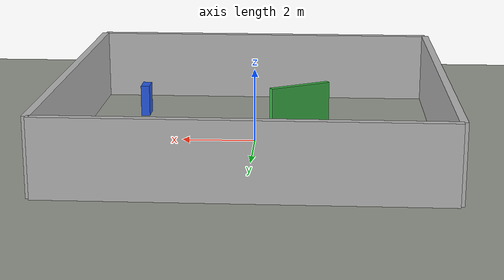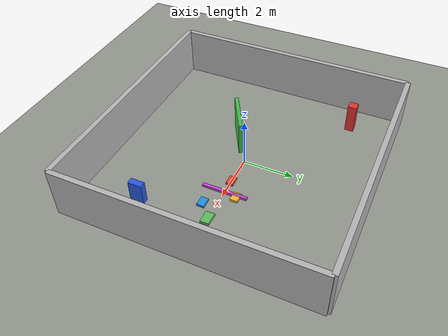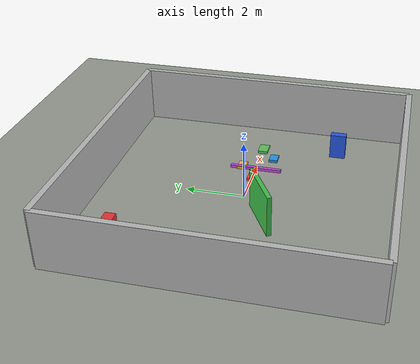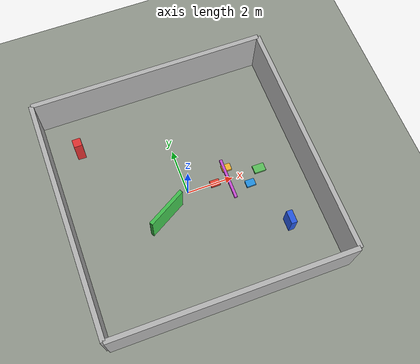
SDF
<?xml version="1.0" ?>
<sdf version="1.10">
  <world name="lidar_height_test">
    <gravity>0 0 -9.8</gravity>
    <physics type="ode">
      <max_step_size>0.004</max_step_size>
      <real_time_factor>1</real_time_factor>
      <real_time_update_rate>250</real_time_update_rate>
      <max_contacts>20</max_contacts>
    </physics>

    <plugin name="gz::sim::systems::Physics" filename="gz-sim-physics-system"/>
    <plugin name="gz::sim::systems::UserCommands" filename="gz-sim-user-commands-system"/>
    <plugin name="gz::sim::systems::SceneBroadcaster" filename="gz-sim-scene-broadcaster-system"/>
    <plugin name="gz::sim::systems::Contact" filename="gz-sim-contact-system"/>
    <plugin name="gz::sim::systems::Imu" filename="gz-sim-imu-system"/>
    <plugin name="gz::sim::systems::Magnetometer" filename="gz-sim-magnetometer-system"/>
    <plugin name="gz::sim::systems::AirPressure" filename="gz-sim-air-pressure-system"/>
    <plugin name="gz::sim::systems::ApplyLinkWrench" filename="gz-sim-apply-link-wrench-system"/>
    <plugin name="gz::sim::systems::NavSat" filename="gz-sim-navsat-system"/>
    <plugin name="gz::sim::systems::Sensors" filename="gz-sim-sensors-system">
      <render_engine>ogre2</render_engine>
    </plugin>

    <scene>
      <ambient>0.48 0.48 0.48 1</ambient>
      <background>0.73 0.80 0.89 1</background>
      <shadows>false</shadows>
      <grid>true</grid>
    </scene>

    <light name="test_sun" type="directional">
      <cast_shadows>false</cast_shadows>
      <pose>0 0 25 0 0 0</pose>
      <diffuse>0.95 0.95 0.95 1</diffuse>
      <specular>0.2 0.2 0.2 1</specular>
      <attenuation>
        <range>200</range>
        <constant>0.9</constant>
        <linear>0.01</linear>
        <quadratic>0.001</quadratic>
      </attenuation>
      <direction>-0.25 0.2 -0.95</direction>
    </light>

    <model name="floor">
      <static>true</static>
      <pose>0 0 0 0 0 0</pose>
      <link name="link">
        <collision name="collision">
          <geometry>
            <plane>
              <normal>0 0 1</normal>
              <size>20 20</size>
            </plane>
          </geometry>
        </collision>
        <visual name="visual">
          <cast_shadows>false</cast_shadows>
          <geometry>
            <plane>
              <normal>0 0 1</normal>
              <size>20 20</size>
            </plane>
          </geometry>
          <material>
            <ambient>0.58 0.60 0.56 1</ambient>
            <diffuse>0.58 0.60 0.56 1</diffuse>
            <specular>0 0 0 1</specular>
          </material>
        </visual>
      </link>
    </model>

    <!-- Bounding walls (10m x 10m room). -->
    <model name="wall_north">
      <static>true</static>
      <pose>0 5 1.0 0 0 0</pose>
      <link name="link">
        <collision name="collision"><geometry><box><size>10 0.2 2.0</size></box></geometry></collision>
        <visual name="visual"><geometry><box><size>10 0.2 2.0</size></box></geometry></visual>
      </link>
    </model>
    <model name="wall_south">
      <static>true</static>
      <pose>0 -5 1.0 0 0 0</pose>
      <link name="link">
        <collision name="collision"><geometry><box><size>10 0.2 2.0</size></box></geometry></collision>
        <visual name="visual"><geometry><box><size>10 0.2 2.0</size></box></geometry></visual>
      </link>
    </model>
    <model name="wall_east">
      <static>true</static>
      <pose>5 0 1.0 0 0 0</pose>
      <link name="link">
        <collision name="collision"><geometry><box><size>0.2 10 2.0</size></box></geometry></collision>
        <visual name="visual"><geometry><box><size>0.2 10 2.0</size></box></geometry></visual>
      </link>
    </model>
    <model name="wall_west">
      <static>true</static>
      <pose>-5 0 1.0 0 0 0</pose>
      <link name="link">
        <collision name="collision"><geometry><box><size>0.2 10 2.0</size></box></geometry></collision>
        <visual name="visual"><geometry><box><size>0.2 10 2.0</size></box></geometry></visual>
      </link>
    </model>

    <!-- Height test obstacles placed ahead of robot spawn (0,0). -->
    <model name="obs_front_center_10cm">
      <static>true</static>
      <pose>1.2 0.0 0.05 0 0 0</pose>
      <link name="link">
        <collision name="collision"><geometry><box><size>0.40 0.28 0.10</size></box></geometry></collision>
        <visual name="visual">
          <geometry><box><size>0.40 0.28 0.10</size></box></geometry>
          <material><diffuse>0.93 0.27 0.20 1</diffuse></material>
        </visual>
      </link>
    </model>

    <model name="obs_front_left_10cm">
      <static>true</static>
      <pose>1.9 0.5 0.05 0 0 0</pose>
      <link name="link">
        <collision name="collision"><geometry><box><size>0.40 0.30 0.10</size></box></geometry></collision>
        <visual name="visual">
          <geometry><box><size>0.40 0.30 0.10</size></box></geometry>
          <material><diffuse>0.98 0.72 0.18 1</diffuse></material>
        </visual>
      </link>
    </model>

    <model name="obs_front_right_10cm">
      <static>true</static>
      <pose>2.6 -0.5 0.05 0 0 0</pose>
      <link name="link">
        <collision name="collision"><geometry><box><size>0.40 0.30 0.10</size></box></geometry></collision>
        <visual name="visual">
          <geometry><box><size>0.40 0.30 0.10</size></box></geometry>
          <material><diffuse>0.14 0.58 0.90 1</diffuse></material>
        </visual>
      </link>
    </model>

    <model name="obs_far_center_10cm">
      <static>true</static>
      <pose>3.2 0.0 0.05 0 0 0</pose>
      <link name="link">
        <collision name="collision"><geometry><box><size>0.50 0.35 0.10</size></box></geometry></collision>
        <visual name="visual">
          <geometry><box><size>0.50 0.35 0.10</size></box></geometry>
          <material><diffuse>0.36 0.76 0.36 1</diffuse></material>
        </visual>
      </link>
    </model>

    <!-- Long barrier to guarantee LaserScan hit even with high LiDAR mounting. -->
    <model name="obs_barrier_10cm">
      <static>true</static>
      <pose>1.8 0.0 0.05 0 0 0</pose>
      <link name="link">
        <collision name="collision"><geometry><box><size>0.12 1.80 0.10</size></box></geometry></collision>
        <visual name="visual">
          <geometry><box><size>0.12 1.80 0.10</size></box></geometry>
          <material><diffuse>0.80 0.30 0.85 1</diffuse></material>
        </visual>
      </link>
    </model>

    <!-- Asymmetric tall landmarks (above lidar height) to prevent rotational aliasing. -->
    <model name="landmark_nw_tower">
      <static>true</static>
      <pose>-3.7 3.2 0.60 0 0 0</pose>
      <link name="link">
        <collision name="collision"><geometry><box><size>0.35 0.35 1.20</size></box></geometry></collision>
        <visual name="visual">
          <geometry><box><size>0.35 0.35 1.20</size></box></geometry>
          <material><diffuse>0.90 0.20 0.20 1</diffuse></material>
        </visual>
      </link>
    </model>

    <model name="landmark_se_block">
      <static>true</static>
      <pose>3.4 -2.7 0.45 0 0 0</pose>
      <link name="link">
        <collision name="collision"><geometry><box><size>0.25 0.55 0.90</size></box></geometry></collision>
        <visual name="visual">
          <geometry><box><size>0.25 0.55 0.90</size></box></geometry>
          <material><diffuse>0.15 0.35 0.90 1</diffuse></material>
        </visual>
      </link>
    </model>

    <model name="landmark_slanted_divider">
      <static>true</static>
      <pose>-1.2 -0.8 0.70 0 0 0.52</pose>
      <link name="link">
        <collision name="collision"><geometry><box><size>1.80 0.15 1.40</size></box></geometry></collision>
        <visual name="visual">
          <geometry><box><size>1.80 0.15 1.40</size></box></geometry>
          <material><diffuse>0.25 0.75 0.30 1</diffuse></material>
        </visual>
      </link>
    </model>
  </world>
</sdf>
